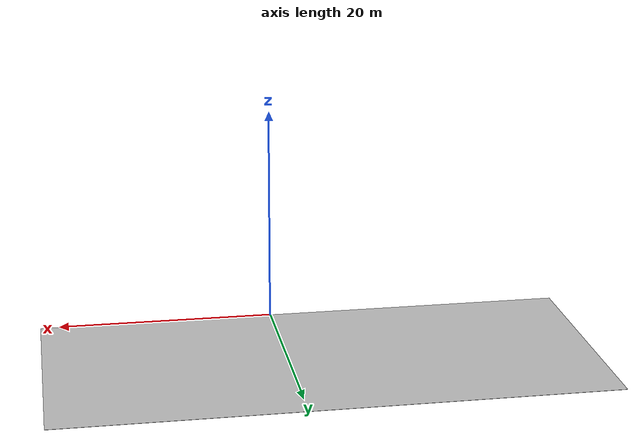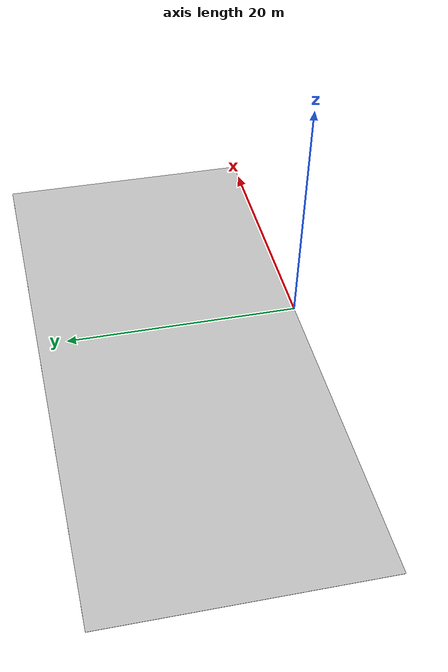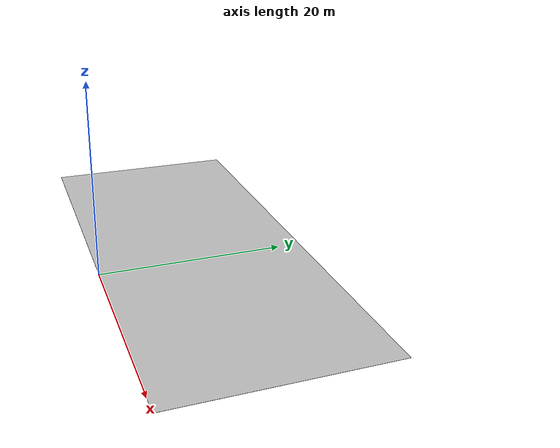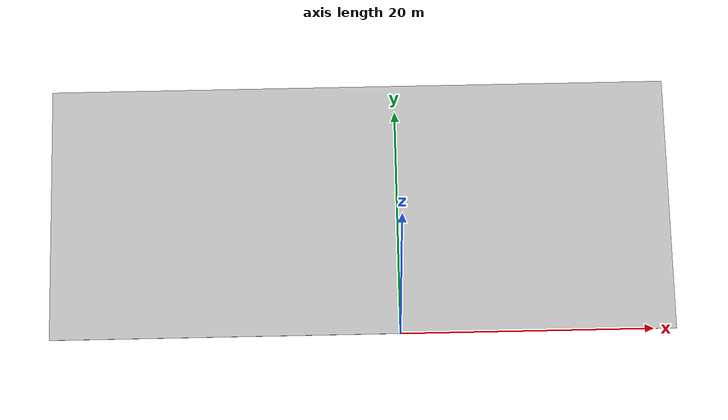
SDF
<sdf version="1.6">
 <world name="default">
  <model name="ceiling">
   <pose>-2.9699999999999998
        11.25
        3.0
        0
        3.141592653589793
        0</pose>
   <static>true</static>
   <link name="link">
    <visual name="visual">
     <geometry><plane><normal>0 0 1</normal><size>49.5 22.5</size></plane></geometry>
     <material>
      <script>
       <uri>file://media/materials/scripts/</uri>
       <uri>file://media/materials/textures/</uri>
       <name>ServiceSim/Ceiling</name>
      </script>
     </material>
    </visual>
   </link>
  </model>
  <model name="floor">
   <pose>-2.9699999999999998
        11.25
        -0.001
        0
        0
        0</pose>
   <static>true</static>
   <link name="link">
    <visual name="visual">
     <geometry><plane><normal>0 0 1</normal><size>49.5 22.5</size></plane></geometry>
     <material>
      <script>
       <uri>file://media/materials/scripts/</uri>
       <uri>file://media/materials/textures/</uri>
       <name>ServiceSim/Hallway</name>
      </script>
     </material>
    </visual>
    <collision name="collision">
     <geometry><plane><normal>0 0 1</normal><size>49.5 22.5</size></plane></geometry>
     <surface><friction><ode><mu>1</mu><mu2>1</mu2></ode></friction></surface>
    </collision>
   </link>
  </model>
  <model name="human_14942_collision_model">
   <pose>0 0 -100 0 0 0</pose>
   <static>true</static>
   <link name="link">
    <collision name="link">
     <pose>0 -0.18 0.05 0 -1.5707963267948966 0</pose>
     <geometry><box><size>0.44 1.62 0.60</size></box></geometry>
    </collision>
   </link>
  </model>
  <model name="human_20632_collision_model">
   <pose>0 0 -100 0 0 0</pose>
   <static>true</static>
   <link name="link">
    <collision name="link">
     <pose>0 -0.18 0.05 0 -1.5707963267948966 0</pose>
     <geometry><box><size>0.44 1.62 0.60</size></box></geometry>
    </collision>
   </link>
  </model>
  <model name="human_72563_collision_model">
   <pose>0 0 -100 0 0 0</pose>
   <static>true</static>
   <link name="link">
    <collision name="link">
     <pose>0 -0.18 0.05 0 -1.5707963267948966 0</pose>
     <geometry><box><size>0.44 1.62 0.60</size></box></geometry>
    </collision>
   </link>
  </model>
  <model name="human_62620_collision_model">
   <pose>0 0 -100 0 0 0</pose>
   <static>true</static>
   <link name="link">
    <collision name="link">
     <pose>0 -0.18 0.05 0 -1.5707963267948966 0</pose>
     <geometry><box><size>0.44 1.62 0.60</size></box></geometry>
    </collision>
   </link>
  </model>
  <model name="human_98443_collision_model">
   <pose>0 0 -100 0 0 0</pose>
   <static>true</static>
   <link name="link">
    <collision name="link">
     <pose>0 -0.18 0.05 0 -1.5707963267948966 0</pose>
     <geometry><box><size>0.44 1.62 0.60</size></box></geometry>
    </collision>
   </link>
  </model>
  <model name="human_99236_collision_model">
   <pose>0 0 -100 0 0 0</pose>
   <static>true</static>
   <link name="link">
    <collision name="link">
     <pose>0 -0.18 0.05 0 -1.5707963267948966 0</pose>
     <geometry><box><size>0.44 1.62 0.60</size></box></geometry>
    </collision>
   </link>
  </model>
  <model name="human_26421_collision_model">
   <pose>0 0 -100 0 0 0</pose>
   <static>true</static>
   <link name="link">
    <collision name="link">
     <pose>0 -0.18 0.05 0 -1.5707963267948966 0</pose>
     <geometry><box><size>0.44 1.62 0.60</size></box></geometry>
    </collision>
   </link>
  </model>
  <model name="human_25954_collision_model">
   <pose>0 0 -100 0 0 0</pose>
   <static>true</static>
   <link name="link">
    <collision name="link">
     <pose>0 -0.18 0.05 0 -1.5707963267948966 0</pose>
     <geometry><box><size>0.44 1.62 0.60</size></box></geometry>
    </collision>
   </link>
  </model>
  <model name="human_94763_collision_model">
   <pose>0 0 -100 0 0 0</pose>
   <static>true</static>
   <link name="link">
    <collision name="link">
     <pose>0 -0.18 0.05 0 -1.5707963267948966 0</pose>
     <geometry><box><size>0.44 1.62 0.60</size></box></geometry>
    </collision>
   </link>
  </model>
  <model name="human_80283_collision_model">
   <pose>0 0 -100 0 0 0</pose>
   <static>true</static>
   <link name="link">
    <collision name="link">
     <pose>0 -0.18 0.05 0 -1.5707963267948966 0</pose>
     <geometry><box><size>0.44 1.62 0.60</size></box></geometry>
    </collision>
   </link>
  </model>
  <model name="human_20843_collision_model">
   <pose>0 0 -100 0 0 0</pose>
   <static>true</static>
   <link name="link">
    <collision name="link">
     <pose>0 -0.18 0.05 0 -1.5707963267948966 0</pose>
     <geometry><box><size>0.44 1.62 0.60</size></box></geometry>
    </collision>
   </link>
  </model>
 </world>
</sdf>
